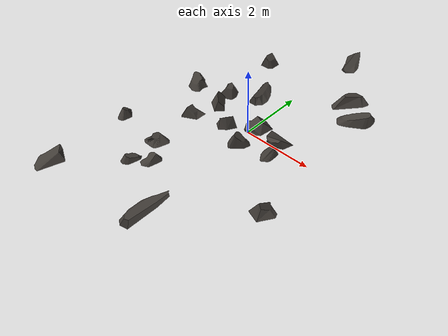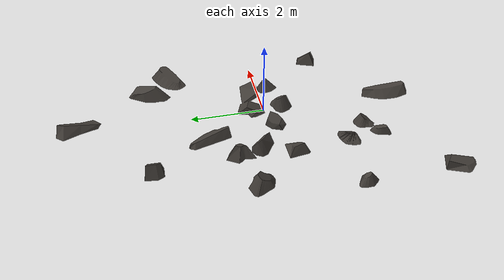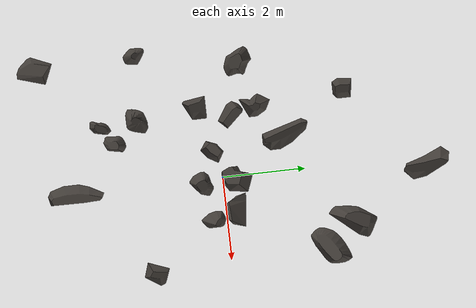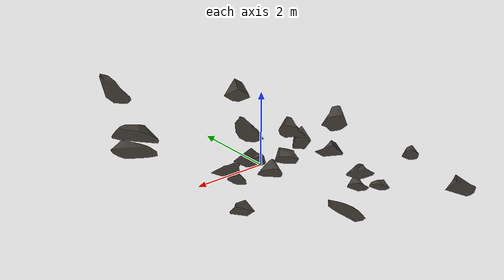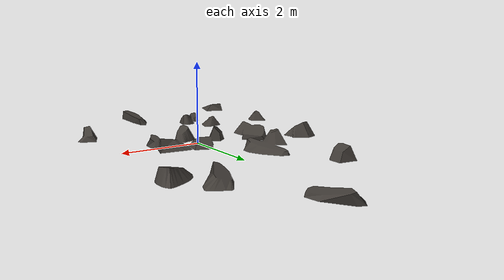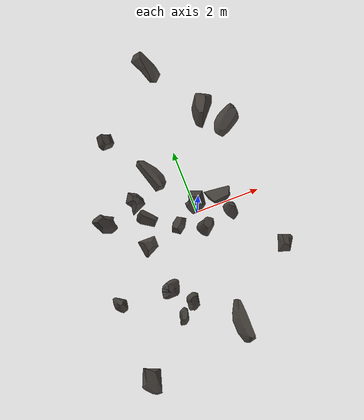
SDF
<?xml version="1.0"?>
<sdf version="1.9">
  <model name="aero_sense_rubble_a">
    <static>true</static>
    <link name="link">
      <visual name="visual">
        <geometry><mesh><uri>model://debris_2_1/meshes/debris_2_1.dae</uri><scale>4 4 4</scale></mesh></geometry>
        <material><ambient>0.26 0.24 0.22 1</ambient><diffuse>0.26 0.24 0.22 1</diffuse></material>
      </visual>
    </link>
  </model>
</sdf>
